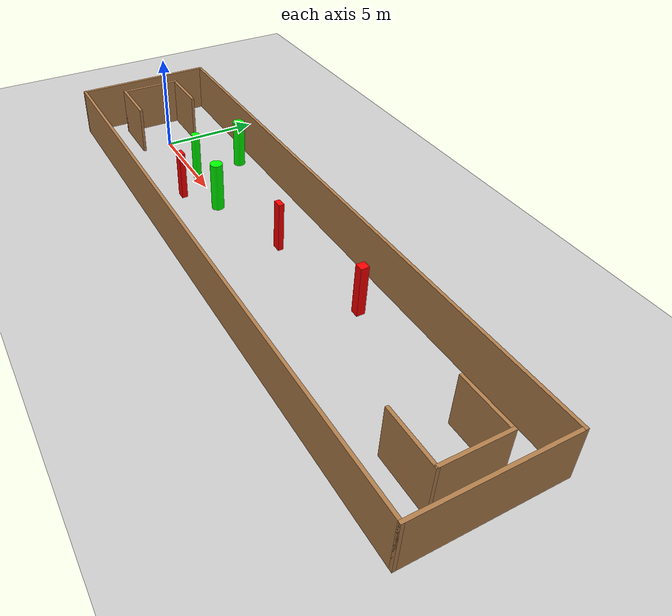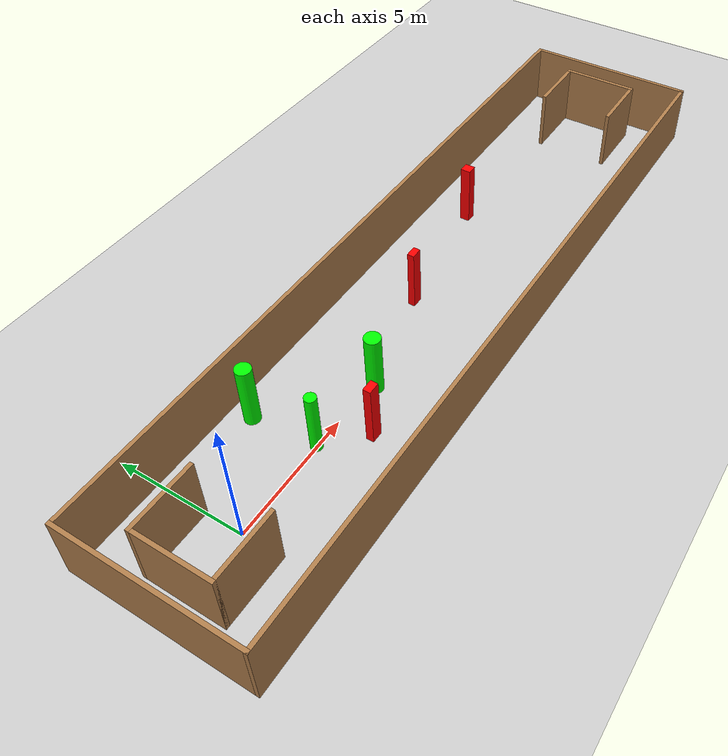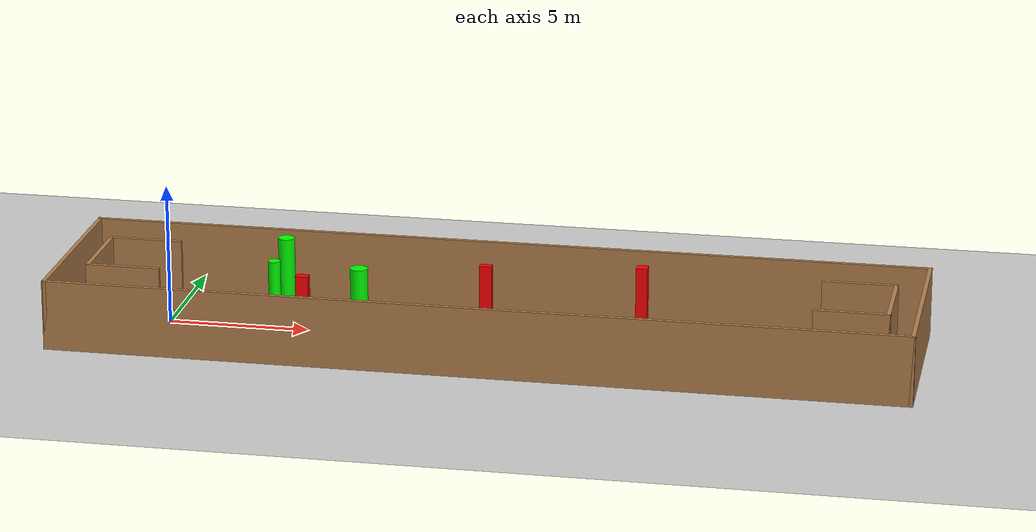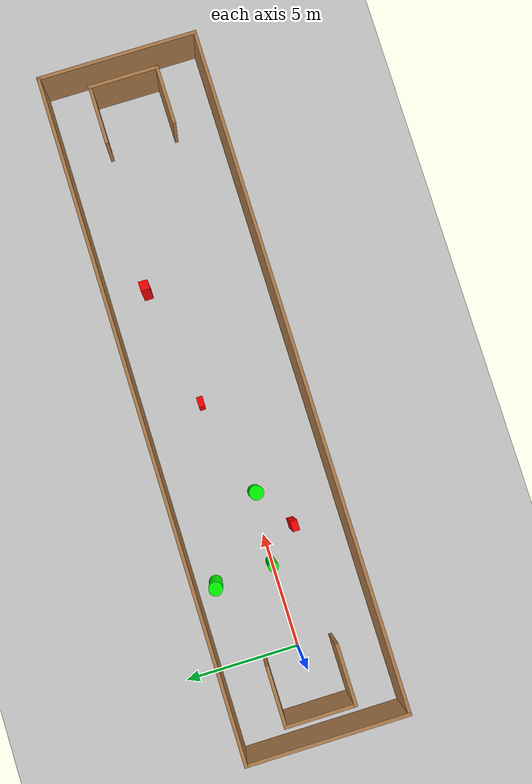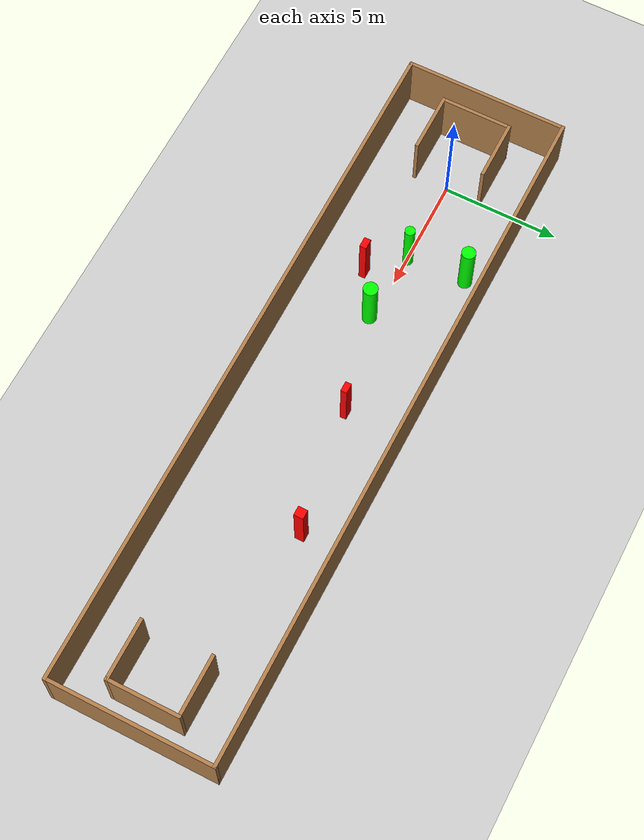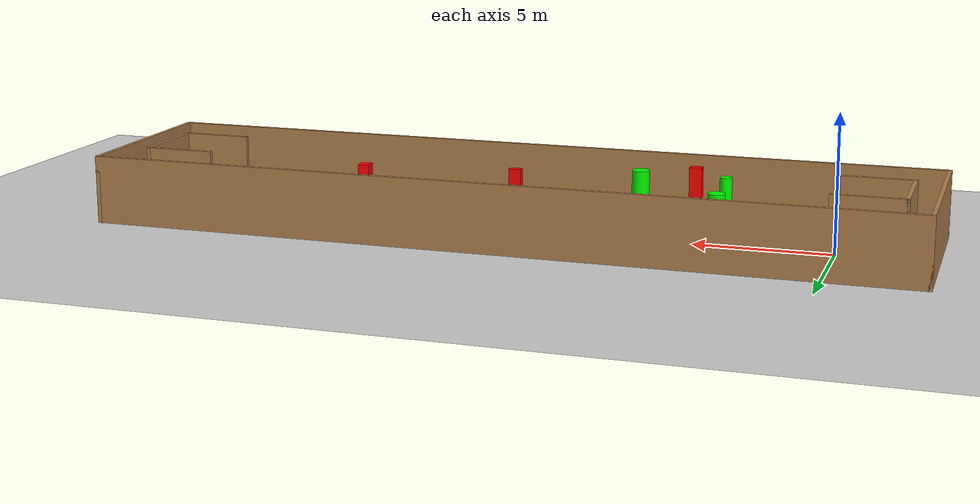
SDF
<sdf version="1.7">
 <world name="default">
  <light name="sun" type="directional">
   <pose>0 0 10 0 -0 0</pose>
   <diffuse>0.8 0.8 0.8 1</diffuse>
   <specular>0.2 0.2 0.2 1</specular>
   <attenuation>
    <range>1000</range>
    <constant>0.9</constant>
    <linear>0.01</linear>
    <quadratic>0.001</quadratic>
   </attenuation>
   <direction>-0.5 0.1 -0.9</direction>
   <spot><inner_angle>0</inner_angle><outer_angle>0</outer_angle><falloff>0</falloff></spot>
  </light>
  <model name="ground_plane">
   <static>1</static>
   <link name="link">
    <collision name="collision">
     <geometry><plane><normal>0 0 1</normal><size>100 100</size></plane></geometry>
     <surface>
      <contact><collide_bitmask>65535</collide_bitmask></contact>
      <friction><ode><mu>100</mu><mu2>50</mu2></ode></friction>
     </surface>
    </collision>
    <visual name="visual">
     <cast_shadows>0</cast_shadows>
     <geometry><plane><normal>0 0 1</normal><size>100 100</size></plane></geometry>
     <material>
      <script><uri>file://media/materials/scripts/gazebo.material</uri><name>Gazebo/Grey</name></script>
     </material>
    </visual>
   </link>
  </model>
  <gravity>0 0 -9.8</gravity>
  <magnetic_field>6e-06 2.3e-05 -4.2e-05</magnetic_field>
  <atmosphere type="adiabatic"/>
  <physics type="ode">
   <max_step_size>0.001</max_step_size>
   <real_time_factor>1</real_time_factor>
   <real_time_update_rate>1000</real_time_update_rate>
  </physics>
  <scene><ambient>0.4 0.4 0.4 1</ambient><background>0.7 0.7 0.7 1</background><shadows>1</shadows></scene>
  <spherical_coordinates>
   <surface_model>EARTH_WGS84</surface_model>
   <latitude_deg>0</latitude_deg>
   <longitude_deg>0</longitude_deg>
   <elevation>0</elevation>
   <heading_deg>0</heading_deg>
  </spherical_coordinates>
  <model name="my_base_walls">
   <link name="Wall_0">
    <collision name="Wall_0_Collision">
     <geometry><box><size>7.15 0.15 2.5</size></box></geometry>
     <pose>0 0 1.25 0 -0 0</pose>
    </collision>
    <visual name="Wall_0_Visual">
     <pose>0 0 1.25 0 -0 0</pose>
     <geometry><box><size>7.15 0.15 2.5</size></box></geometry>
     <material>
      <script><uri>file://media/materials/scripts/gazebo.material</uri><name>Gazebo/Wood</name></script>
      <ambient>1 1 1 1</ambient>
     </material>
     <meta><layer>0</layer></meta>
    </visual>
    <pose>-15 0 0 0 -0 1.5708</pose>
   </link>
   <link name="Wall_10">
    <collision name="Wall_10_Collision">
     <geometry><box><size>2.65 0.15 2.5</size></box></geometry>
     <pose>0 0 1.25 0 -0 0</pose>
    </collision>
    <visual name="Wall_10_Visual">
     <pose>0 0 1.25 0 -0 0</pose>
     <geometry><box><size>2.65 0.15 2.5</size></box></geometry>
     <material>
      <script><uri>file://media/materials/scripts/gazebo.material</uri><name>Gazebo/Wood</name></script>
      <ambient>1 1 1 1</ambient>
     </material>
     <meta><layer>0</layer></meta>
    </visual>
    <pose>-12.75 -1.5 0 0 -0 0</pose>
   </link>
   <link name="Wall_12">
    <collision name="Wall_12_Collision">
     <geometry><box><size>2.65 0.15 2.5</size></box></geometry>
     <pose>0 0 1.25 0 -0 0</pose>
    </collision>
    <visual name="Wall_12_Visual">
     <pose>0 0 1.25 0 -0 0</pose>
     <geometry><box><size>2.65 0.15 2.5</size></box></geometry>
     <material>
      <script><uri>file://media/materials/scripts/gazebo.material</uri><name>Gazebo/Wood</name></script>
      <ambient>1 1 1 1</ambient>
     </material>
     <meta><layer>0</layer></meta>
    </visual>
    <pose>-12.75 1.5 0 0 -0 0</pose>
   </link>
   <link name="Wall_14">
    <collision name="Wall_14_Collision">
     <geometry><box><size>3.15 0.15 2.5</size></box></geometry>
     <pose>0 0 1.25 0 -0 0</pose>
    </collision>
    <visual name="Wall_14_Visual">
     <pose>0 0 1.25 0 -0 0</pose>
     <geometry><box><size>3.15 0.15 2.5</size></box></geometry>
     <material>
      <script><uri>file://media/materials/scripts/gazebo.material</uri><name>Gazebo/Wood</name></script>
      <ambient>1 1 1 1</ambient>
     </material>
     <meta><layer>0</layer></meta>
    </visual>
    <pose>14 0 0 0 -0 -1.5708</pose>
   </link>
   <link name="Wall_15">
    <collision name="Wall_15_Collision">
     <geometry><box><size>2.65 0.15 2.5</size></box></geometry>
     <pose>0 0 1.25 0 -0 0</pose>
    </collision>
    <visual name="Wall_15_Visual">
     <pose>0 0 1.25 0 -0 0</pose>
     <geometry><box><size>2.65 0.15 2.5</size></box></geometry>
     <material>
      <script><uri>file://media/materials/scripts/gazebo.material</uri><name>Gazebo/Wood</name></script>
      <ambient>1 1 1 1</ambient>
     </material>
     <meta><layer>0</layer></meta>
    </visual>
    <pose>12.75 -1.5 0 0 -0 3.14159</pose>
   </link>
   <link name="Wall_17">
    <collision name="Wall_17_Collision">
     <geometry><box><size>2.65 0.15 2.5</size></box></geometry>
     <pose>0 0 1.25 0 -0 0</pose>
    </collision>
    <visual name="Wall_17_Visual">
     <pose>0 0 1.25 0 -0 0</pose>
     <geometry><box><size>2.65 0.15 2.5</size></box></geometry>
     <material>
      <script><uri>file://media/materials/scripts/gazebo.material</uri><name>Gazebo/Wood</name></script>
      <ambient>1 1 1 1</ambient>
     </material>
     <meta><layer>0</layer></meta>
    </visual>
    <pose>12.75 1.5 0 0 -0 3.14159</pose>
   </link>
   <link name="Wall_2">
    <collision name="Wall_2_Collision">
     <geometry><box><size>30.15 0.15 2.5</size></box></geometry>
     <pose>0 0 1.25 0 -0 0</pose>
    </collision>
    <visual name="Wall_2_Visual">
     <pose>0 0 1.25 0 -0 0</pose>
     <geometry><box><size>30.15 0.15 2.5</size></box></geometry>
     <material>
      <script><uri>file://media/materials/scripts/gazebo.material</uri><name>Gazebo/Wood</name></script>
      <ambient>1 1 1 1</ambient>
     </material>
     <meta><layer>0</layer></meta>
    </visual>
    <pose>-0 -3.5 0 0 -0 0</pose>
   </link>
   <link name="Wall_4">
    <collision name="Wall_4_Collision">
     <geometry><box><size>30.15 0.15 2.5</size></box></geometry>
     <pose>0 0 1.25 0 -0 0</pose>
    </collision>
    <visual name="Wall_4_Visual">
     <pose>0 0 1.25 0 -0 0</pose>
     <geometry><box><size>30.15 0.15 2.5</size></box></geometry>
     <material>
      <script><uri>file://media/materials/scripts/gazebo.material</uri><name>Gazebo/Wood</name></script>
      <ambient>1 1 1 1</ambient>
     </material>
     <meta><layer>0</layer></meta>
    </visual>
    <pose>-0 3.5 0 0 -0 0</pose>
   </link>
   <link name="Wall_6">
    <collision name="Wall_6_Collision">
     <geometry><box><size>7.15 0.15 2.5</size></box></geometry>
     <pose>0 0 1.25 0 -0 0</pose>
    </collision>
    <visual name="Wall_6_Visual">
     <pose>0 0 1.25 0 -0 0</pose>
     <geometry><box><size>7.15 0.15 2.5</size></box></geometry>
     <material>
      <script><uri>file://media/materials/scripts/gazebo.material</uri><name>Gazebo/Wood</name></script>
      <ambient>1 1 1 1</ambient>
     </material>
     <meta><layer>0</layer></meta>
    </visual>
    <pose>15 0 0 0 -0 -1.5708</pose>
   </link>
   <link name="Wall_9">
    <collision name="Wall_9_Collision">
     <geometry><box><size>3.15 0.15 2.5</size></box></geometry>
     <pose>0 0 1.25 0 -0 0</pose>
    </collision>
    <visual name="Wall_9_Visual">
     <pose>0 0 1.25 0 -0 0</pose>
     <geometry><box><size>3.15 0.15 2.5</size></box></geometry>
     <material>
      <script><uri>file://media/materials/scripts/gazebo.material</uri><name>Gazebo/Wood</name></script>
      <ambient>1 1 1 1</ambient>
     </material>
     <meta><layer>0</layer></meta>
    </visual>
    <pose>-14 0 0 0 -0 -1.5708</pose>
   </link>
   <static>1</static>
   <pose>11.5 0 0 0 -0 0</pose>
  </model>
  <model name="cylinder1">
   <static>1</static>
   <link name="link">
    <inertial>
     <mass>1</mass>
     <inertia><ixx>0.5</ixx><ixy>0</ixy><ixz>0</ixz><iyy>0.5</iyy><iyz>0</iyz><izz>1</izz></inertia>
    </inertial>
    <collision name="collision">
     <geometry><cylinder><radius>0.29719497472764844</radius><length>2.5</length></cylinder></geometry>
    </collision>
    <visual name="visual">
     <geometry><cylinder><radius>0.29719497472764844</radius><length>2.5</length></cylinder></geometry>
     <material>
      <ambient>0 1 0 1</ambient>
      <diffuse>0 1 0 1</diffuse>
      <specular>0.1 0.1 0.1 1</specular>
      <emissive>0 0 0 0</emissive>
     </material>
    </visual>
   </link>
   <pose>3.6517147790592706 2.58326177740003 1.25 0 0 0</pose>
  </model>
  <model name="cylinder2">
   <static>1</static>
   <link name="link">
    <inertial>
     <mass>1</mass>
     <inertia><ixx>0.5</ixx><ixy>0</ixy><ixz>0</ixz><iyy>0.5</iyy><iyz>0</iyz><izz>1</izz></inertia>
    </inertial>
    <collision name="collision">
     <geometry><cylinder><radius>0.21748805881591504</radius><length>2.5</length></cylinder></geometry>
    </collision>
    <visual name="visual">
     <geometry><cylinder><radius>0.21748805881591504</radius><length>2.5</length></cylinder></geometry>
     <material>
      <ambient>0 1 0 1</ambient>
      <diffuse>0 1 0 1</diffuse>
      <specular>0.1 0.1 0.1 1</specular>
      <emissive>0 0 0 0</emissive>
     </material>
    </visual>
   </link>
   <pose>3.822474706402973 0.04056136331291249 1.25 0 0 0</pose>
  </model>
  <model name="cylinder3">
   <static>1</static>
   <link name="link">
    <inertial>
     <mass>1</mass>
     <inertia><ixx>0.5</ixx><ixy>0</ixy><ixz>0</ixz><iyy>0.5</iyy><iyz>0</iyz><izz>1</izz></inertia>
    </inertial>
    <collision name="collision">
     <geometry><cylinder><radius>0.31047790874674214</radius><length>2.5</length></cylinder></geometry>
    </collision>
    <visual name="visual">
     <geometry><cylinder><radius>0.31047790874674214</radius><length>2.5</length></cylinder></geometry>
     <material>
      <ambient>0 1 0 1</ambient>
      <diffuse>0 1 0 1</diffuse>
      <specular>0.1 0.1 0.1 1</specular>
      <emissive>0 0 0 0</emissive>
     </material>
    </visual>
   </link>
   <pose>6.914942458644129 -0.18820838838830944 1.25 0 0 0</pose>
  </model>
  <model name="box1">
   <static>1</static>
   <link name="link">
    <inertial>
     <mass>1</mass>
     <inertia><ixx>0.083</ixx><ixy>0</ixy><ixz>0</ixz><iyy>0.083</iyy><iyz>0</iyz><izz>0.083</izz></inertia>
    </inertial>
    <collision name="collision">
     <geometry><box><size>0.3983913857908225 0.4039711737041549 2.5</size></box></geometry>
    </collision>
    <visual name="visual">
     <geometry><box><size>0.3983913857908225 0.4039711737041549 2.5</size></box></geometry>
     <material>
      <ambient>1 0 0 1</ambient>
      <diffuse>1 0 0 1</diffuse>
      <specular>0.1 0.1 0.1 1</specular>
      <emissive>0 0 0 0</emissive>
     </material>
    </visual>
    <sensor name="my_contact" type="contact">
     <contact><collision>box_collision</collision><topic>__default_topic__</topic></contact>
    </sensor>
   </link>
   <pose>16.61696549034619 1.7563001121062491 1.25 0 0 0</pose>
  </model>
  <model name="box2">
   <static>1</static>
   <link name="link">
    <inertial>
     <mass>1</mass>
     <inertia><ixx>0.083</ixx><ixy>0</ixy><ixz>0</ixz><iyy>0.083</iyy><iyz>0</iyz><izz>0.083</izz></inertia>
    </inertial>
    <collision name="collision">
     <geometry><box><size>0.4439410718082428 0.266142209169383 2.5</size></box></geometry>
    </collision>
    <visual name="visual">
     <geometry><box><size>0.4439410718082428 0.266142209169383 2.5</size></box></geometry>
     <material>
      <ambient>1 0 0 1</ambient>
      <diffuse>1 0 0 1</diffuse>
      <specular>0.1 0.1 0.1 1</specular>
      <emissive>0 0 0 0</emissive>
     </material>
    </visual>
    <sensor name="my_contact" type="contact">
     <contact><collision>box_collision</collision><topic>__default_topic__</topic></contact>
    </sensor>
   </link>
   <pose>11.216604655673702 0.9142142867795204 1.25 0 0 0</pose>
  </model>
  <model name="box3">
   <static>1</static>
   <link name="link">
    <inertial>
     <mass>1</mass>
     <inertia><ixx>0.083</ixx><ixy>0</ixy><ixz>0</ixz><iyy>0.083</iyy><iyz>0</iyz><izz>0.083</izz></inertia>
    </inertial>
    <collision name="collision">
     <geometry><box><size>0.4532802433582391 0.2889246081035941 2.5</size></box></geometry>
    </collision>
    <visual name="visual">
     <geometry><box><size>0.4532802433582391 0.2889246081035941 2.5</size></box></geometry>
     <material>
      <ambient>1 0 0 1</ambient>
      <diffuse>1 0 0 1</diffuse>
      <specular>0.1 0.1 0.1 1</specular>
      <emissive>0 0 0 0</emissive>
     </material>
    </visual>
    <sensor name="my_contact" type="contact">
     <contact><collision>box_collision</collision><topic>__default_topic__</topic></contact>
    </sensor>
   </link>
   <pose>5.157636329657379 -1.3129927219093673 1.25 0 0 0</pose>
  </model>
 </world>
</sdf>
